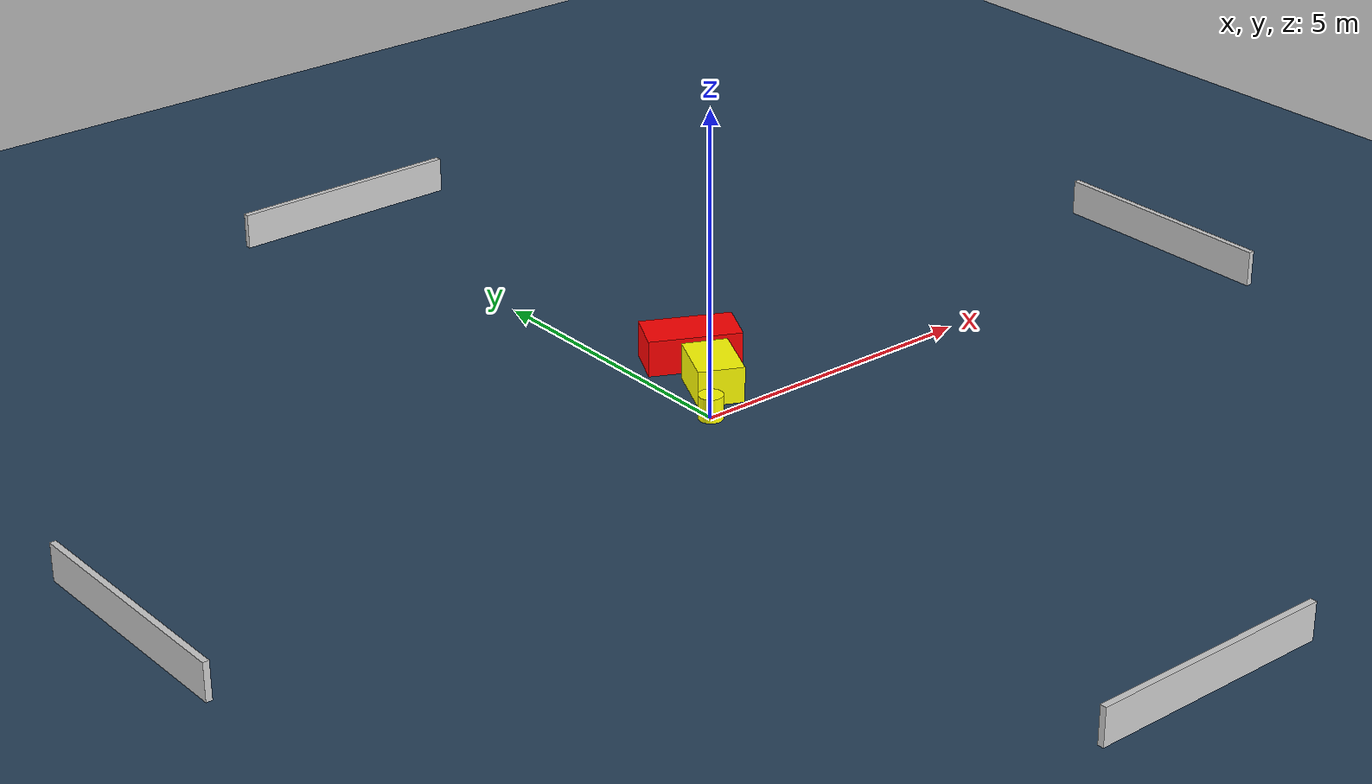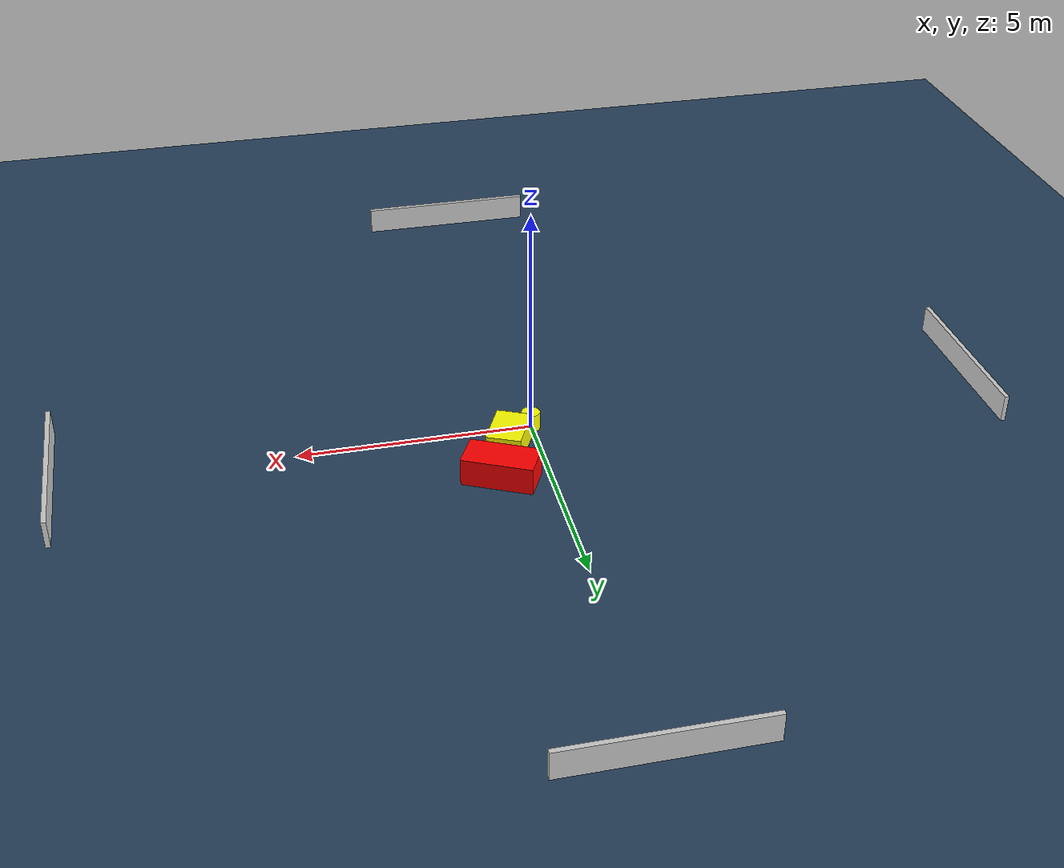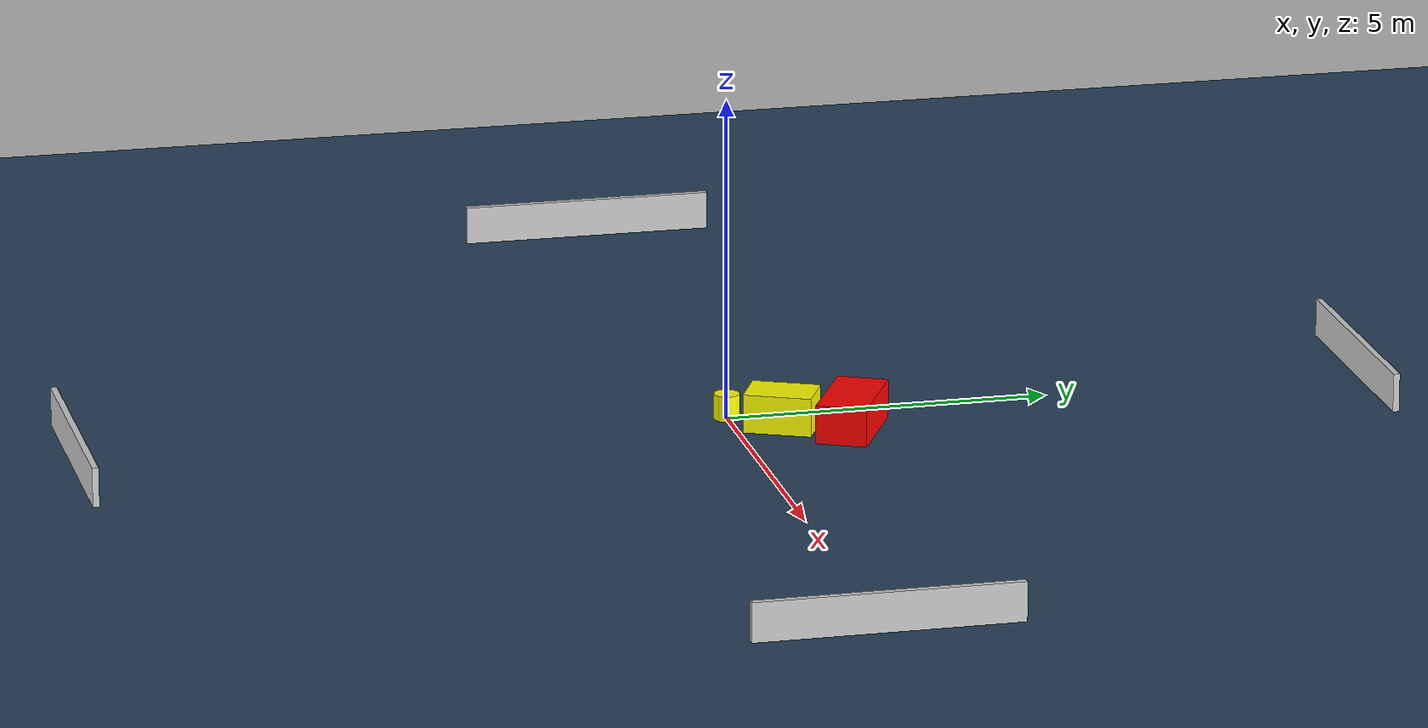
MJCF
<?xml version="1.0" ?>
<mujoco model="generated_environment">
  <option timestep="0.01" integrator="RK4" cone="elliptic"/>
  <default>
    <geom density="1"/>
  </default>
  <asset>
    <texture builtin="gradient" height="3072" name="skybox" rgb1="0.3 0.5 0.7" rgb2="0 0 0" type="skybox" width="512"/>
    <texture builtin="checker" height="300" name="groundplane" rgb1="0.2 0.3 0.4" rgb2="0.1 0.2 0.3" type="2d" width="300"/>
    <material name="groundplane" reflectance="0.2" texrepeat="5 5" texture="groundplane"/>
  </asset>
  <worldbody>
    <light dir="0 0 -1" directional="true" pos="0 0 1.5"/>
    <geom condim="3" friction="0.5 0.005 0.001" material="groundplane" name="floor" pos="0 0 0" size="0 0 0.05" type="plane"/>
    <body name="walls">
      <geom name="wall_1" condim="4" pos="-10.0 0.0 0.3" rgba="0.800000011920929 0.800000011920929 0.800000011920929 1.0" size="0.05 2.0 0.3" type="box"/>
      <geom name="wall_2" condim="4" pos="10.0 0.0 0.3" rgba="0.800000011920929 0.800000011920929 0.800000011920929 1.0" size="0.05 2.0 0.3" type="box"/>
      <geom name="wall_3" condim="4" pos="0.0 -10.0 0.3" rgba="0.800000011920929 0.800000011920929 0.800000011920929 1.0" size="2.0 0.05 0.3" type="box"/>
      <geom name="wall_4" condim="4" pos="0.0 10.0 0.3" rgba="0.800000011920929 0.800000011920929 0.800000011920929 1.0" size="2.0 0.05 0.3" type="box"/>
    </body>
    <body name="robot">
      <joint name="joint_x" type="slide" pos="0 0 0" axis="1 0 0"/>
      <joint name="joint_y" type="slide" pos="0 0 0" axis="0 1 0"/>
      <geom name="robot" type="cylinder" pos="0.0 0.0 0.2" size="0.2 0.2 0.0" mass="5.0" friction="1.0 0.005 0.0001" condim="4" rgba="1.0 1.0 0.0 1.0"/>
    </body>
    <body name="obstacle_1_movable">
      <geom name="obstacle_1_movable" condim="4" pos="0.6297350679465278 0.7070703194778084 0.3" euler="0 0 64.81943966400914" friction="0.0 0.005 0.001" rgba="1.0 1.0 0.0 1.0" size="0.524522362423377 0.3717501298778799 0.3" type="box" mass="0.1"/>
      <joint type="free"/>
    </body>
    <body name="obstacle_2_static">
      <geom name="obstacle_2_static" condim="4" pos="1.0034494356816377 1.7094379644534494 0.3" euler="0 0 63.45877533382036" friction="0.0 0.005 0.001" rgba="1.0 0.0 0.0 1.0" size="0.39219150767277594 0.7589226492697794 0.3" type="box"/>
    </body>
  </worldbody>
  <actuator>
    <motor name="actuator_x" joint="joint_x" gear="1" ctrlrange="-1 1"/>
    <motor name="actuator_y" joint="joint_y" gear="1" ctrlrange="-1 1"/>
  </actuator>
</mujoco>
